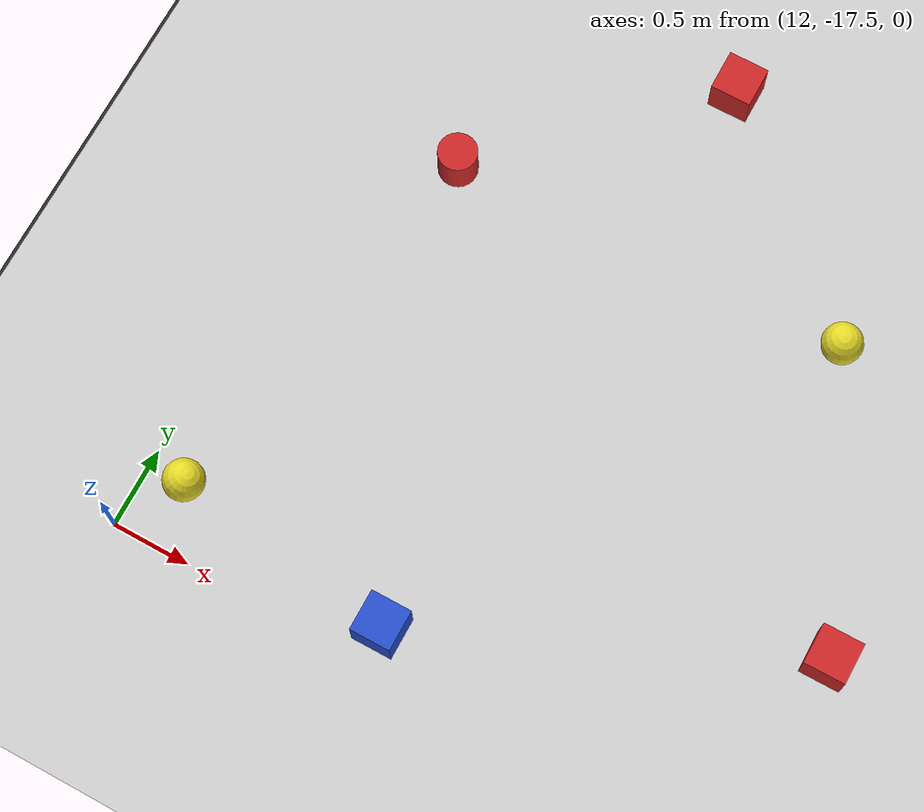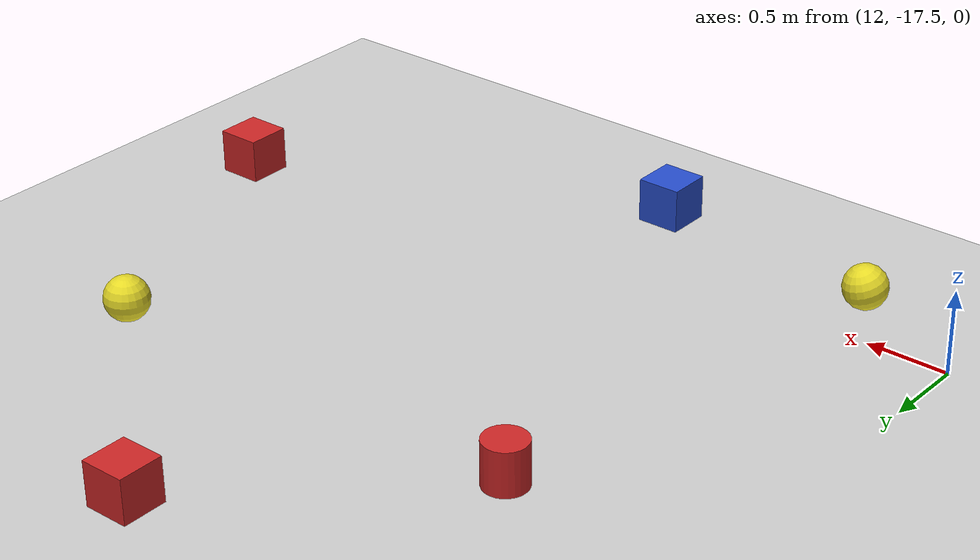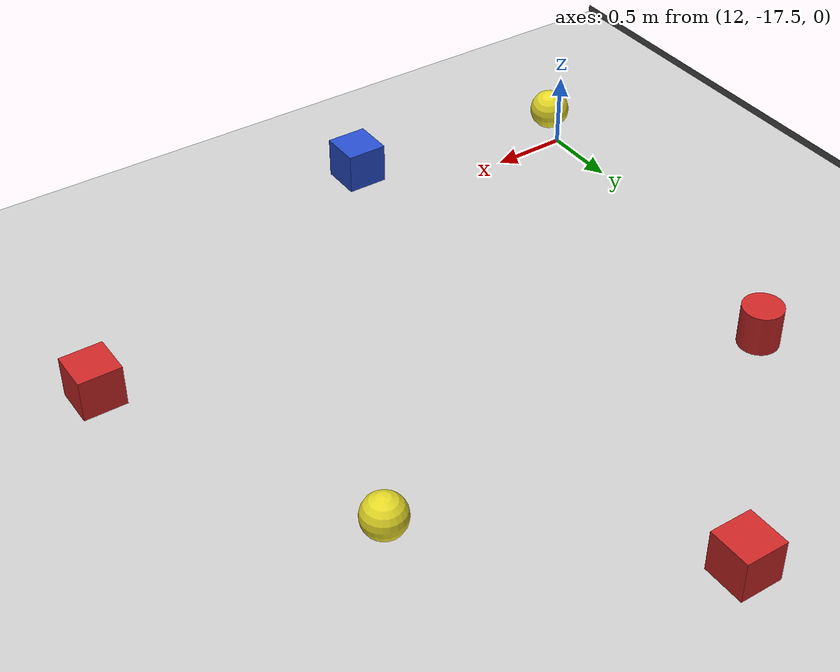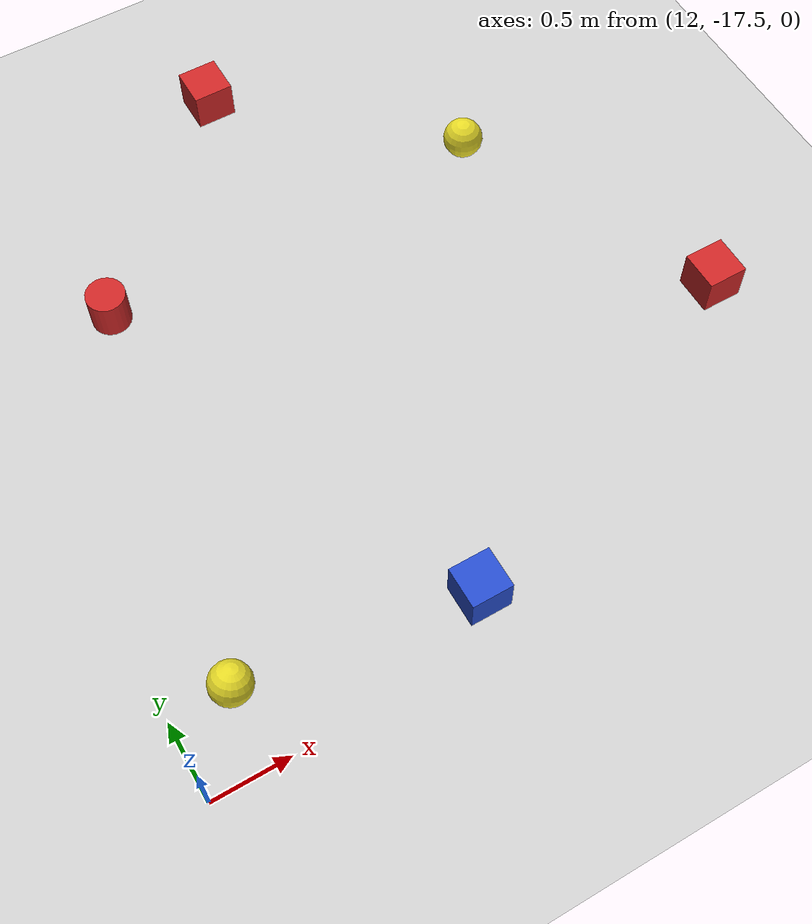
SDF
<sdf version="1.7">
 <world name="default">
  <model name="ground_plane">
   <static>1</static>
   <link name="link">
    <collision name="collision">
     <geometry><plane><normal>0 0 1</normal><size>100 100</size></plane></geometry>
     <surface><friction><ode><mu>100</mu><mu2>50</mu2></ode></friction></surface>
    </collision>
    <visual name="visual">
     <cast_shadows>0</cast_shadows>
     <geometry><plane><normal>0 0 1</normal><size>100 100</size></plane></geometry>
     <material>
      <script><uri>file://media/materials/scripts/gazebo.material</uri><name>Gazebo/Grey</name></script>
     </material>
    </visual>
    <velocity_decay><linear>0</linear><angular>0</angular></velocity_decay>
   </link>
  </model>
  <model name="asphalt_plane">
   <static>1</static>
   <link name="link">
    <collision name="collision"><geometry><box><size>20 20 0.1</size></box></geometry></collision>
    <visual name="visual">
     <cast_shadows>0</cast_shadows>
     <geometry><box><size>20 20 0.1</size></box></geometry>
     <material>
      <script>
       <uri>model://asphalt_plane/materials/scripts</uri>
       <uri>model://asphalt_plane/materials/textures</uri>
       <name>vrc/asphalt</name>
      </script>
     </material>
    </visual>
   </link>
   <pose>-9.73878 -10.1135 0 0 -0 0</pose>
  </model>
  <model name="unit_cylinder_red_25">
   <link name="link">
    <inertial>
     <mass>1</mass>
     <inertia><ixx>0.145833</ixx><ixy>0</ixy><ixz>0</ixz><iyy>0.145833</iyy><iyz>0</iyz><izz>0.125</izz></inertia>
    </inertial>
    <visual name="visual">
     <geometry><cylinder><radius>0.12</radius><length>0.25</length></cylinder></geometry>
     <material>
      <script><name>Gazebo/Red</name><uri>file://media/materials/scripts/gazebo.material</uri></script>
      <shader type="vertex"><normal_map>__default__</normal_map></shader>
      <ambient>1 0 0 1</ambient>
      <diffuse>1 0 0 1</diffuse>
      <specular>0.1 0.1 0.1 1</specular>
      <emissive>0 0 0 1</emissive>
     </material>
    </visual>
    <collision name="collision">
     <geometry><cylinder><radius>0.5</radius><length>1</length></cylinder></geometry>
     <surface>
      <friction>
       <ode><mu>1</mu><mu2>1</mu2><fdir1>0 0 0</fdir1><slip1>0</slip1><slip2>0</slip2></ode>
       <torsional>
        <coefficient>1</coefficient>
        <patch_radius>0</patch_radius>
        <surface_radius>0</surface_radius>
        <use_patch_radius>1</use_patch_radius>
        <ode><slip>0</slip></ode>
       </torsional>
      </friction>
      <bounce><restitution_coefficient>0</restitution_coefficient><threshold>1e+06</threshold></bounce>
      <contact>
       <collide_without_contact>0</collide_without_contact>
       <collide_without_contact_bitmask>1</collide_without_contact_bitmask>
       <collide_bitmask>1</collide_bitmask>
       <ode>
        <soft_cfm>0</soft_cfm>
        <soft_erp>0.2</soft_erp>
        <kp>1e+13</kp>
        <kd>1</kd>
        <max_vel>0.01</max_vel>
        <min_depth>0</min_depth>
       </ode>
       <bullet>
        <split_impulse>1</split_impulse>
        <split_impulse_penetration_threshold>-0.01</split_impulse_penetration_threshold>
        <soft_cfm>0</soft_cfm>
        <soft_erp>0.2</soft_erp>
        <kp>1e+13</kp>
        <kd>1</kd>
       </bullet>
      </contact>
     </surface>
    </collision>
   </link>
   <static>0</static>
   <pose>12.77 -14.7358 0.549992 4e-06 -0 1.5e-05</pose>
  </model>
  <model name="unit_sphere_yellow_25">
   <link name="link">
    <inertial>
     <mass>1</mass>
     <inertia><ixx>0.1</ixx><ixy>0</ixy><ixz>0</ixz><iyy>0.1</iyy><iyz>0</iyz><izz>0.1</izz></inertia>
    </inertial>
    <visual name="visual">
     <geometry><sphere><radius>0.125</radius></sphere></geometry>
     <material>
      <script><name>Gazebo/Yellow</name><uri>file://media/materials/scripts/gazebo.material</uri></script>
      <shader type="vertex"><normal_map>__default__</normal_map></shader>
      <ambient>1 1 0 1</ambient>
      <diffuse>1 1 0 1</diffuse>
      <emissive>0 0 0 1</emissive>
     </material>
    </visual>
    <collision name="collision">
     <geometry><sphere><radius>0.5</radius></sphere></geometry>
     <surface>
      <friction>
       <ode><mu>1</mu><mu2>1</mu2><fdir1>0 0 0</fdir1><slip1>0</slip1><slip2>0</slip2></ode>
       <torsional>
        <coefficient>1</coefficient>
        <patch_radius>0</patch_radius>
        <surface_radius>0</surface_radius>
        <use_patch_radius>1</use_patch_radius>
        <ode><slip>0</slip></ode>
       </torsional>
      </friction>
      <bounce><restitution_coefficient>0</restitution_coefficient><threshold>1e+06</threshold></bounce>
      <contact>
       <collide_without_contact>0</collide_without_contact>
       <collide_without_contact_bitmask>1</collide_without_contact_bitmask>
       <collide_bitmask>1</collide_bitmask>
       <ode>
        <soft_cfm>0</soft_cfm>
        <soft_erp>0.2</soft_erp>
        <kp>1e+13</kp>
        <kd>1</kd>
        <max_vel>0.01</max_vel>
        <min_depth>0</min_depth>
       </ode>
       <bullet>
        <split_impulse>1</split_impulse>
        <split_impulse_penetration_threshold>-0.01</split_impulse_penetration_threshold>
        <soft_cfm>0</soft_cfm>
        <soft_erp>0.2</soft_erp>
        <kp>1e+13</kp>
        <kd>1</kd>
       </bullet>
      </contact>
     </surface>
    </collision>
   </link>
   <static>0</static>
   <pose>12.3546 -17.172 0.55 -0.278605 -0.140395 -1.34287</pose>
  </model>
  <model name="unit_box_red_25_clone_0">
   <link name="link">
    <inertial>
     <mass>1</mass>
     <inertia>
      <ixx>0.166667</ixx>
      <ixy>0</ixy>
      <ixz>0</ixz>
      <iyy>0.166667</iyy>
      <iyz>0</iyz>
      <izz>0.166667</izz>
     </inertia>
    </inertial>
    <visual name="visual">
     <geometry><box><size>0.25 0.25 0.25</size></box></geometry>
     <material>
      <script><name>Gazebo/Red</name><uri>file://media/materials/scripts/gazebo.material</uri></script>
      <shader type="vertex"><normal_map>__default__</normal_map></shader>
      <ambient>1 0 0 1</ambient>
      <diffuse>1 0 0 1</diffuse>
      <specular>0.1 0.1 0.1 1</specular>
      <emissive>0 0 0 1</emissive>
     </material>
    </visual>
    <collision name="collision">
     <geometry><box><size>1 1 1</size></box></geometry>
     <surface>
      <friction>
       <ode><mu>1</mu><mu2>1</mu2><fdir1>0 0 0</fdir1><slip1>0</slip1><slip2>0</slip2></ode>
       <torsional>
        <coefficient>1</coefficient>
        <patch_radius>0</patch_radius>
        <surface_radius>0</surface_radius>
        <use_patch_radius>1</use_patch_radius>
        <ode><slip>0</slip></ode>
       </torsional>
      </friction>
      <bounce><restitution_coefficient>0</restitution_coefficient><threshold>1e+06</threshold></bounce>
      <contact>
       <collide_without_contact>0</collide_without_contact>
       <collide_without_contact_bitmask>1</collide_without_contact_bitmask>
       <collide_bitmask>1</collide_bitmask>
       <ode>
        <soft_cfm>0</soft_cfm>
        <soft_erp>0.2</soft_erp>
        <kp>1e+13</kp>
        <kd>1</kd>
        <max_vel>0.01</max_vel>
        <min_depth>0</min_depth>
       </ode>
       <bullet>
        <split_impulse>1</split_impulse>
        <split_impulse_penetration_threshold>-0.01</split_impulse_penetration_threshold>
        <soft_cfm>0</soft_cfm>
        <soft_erp>0.2</soft_erp>
        <kp>1e+13</kp>
        <kd>1</kd>
       </bullet>
      </contact>
     </surface>
    </collision>
   </link>
   <static>0</static>
   <pose>15.9855 -16.3426 0.549995 -9e-06 -1e-06 3.9e-05</pose>
  </model>
  <model name="unit_box_red_25_clone_1">
   <link name="link">
    <inertial>
     <mass>1</mass>
     <inertia>
      <ixx>0.166667</ixx>
      <ixy>0</ixy>
      <ixz>0</ixz>
      <iyy>0.166667</iyy>
      <iyz>0</iyz>
      <izz>0.166667</izz>
     </inertia>
    </inertial>
    <visual name="visual">
     <geometry><box><size>0.25 0.25 0.25</size></box></geometry>
     <material>
      <script><name>Gazebo/Red</name><uri>file://media/materials/scripts/gazebo.material</uri></script>
      <shader type="vertex"><normal_map>__default__</normal_map></shader>
      <ambient>1 0 0 1</ambient>
      <diffuse>1 0 0 1</diffuse>
      <specular>0.1 0.1 0.1 1</specular>
      <emissive>0 0 0 1</emissive>
     </material>
    </visual>
    <collision name="collision">
     <geometry><box><size>1 1 1</size></box></geometry>
     <surface>
      <friction>
       <ode><mu>1</mu><mu2>1</mu2><fdir1>0 0 0</fdir1><slip1>0</slip1><slip2>0</slip2></ode>
       <torsional>
        <coefficient>1</coefficient>
        <patch_radius>0</patch_radius>
        <surface_radius>0</surface_radius>
        <use_patch_radius>1</use_patch_radius>
        <ode><slip>0</slip></ode>
       </torsional>
      </friction>
      <bounce><restitution_coefficient>0</restitution_coefficient><threshold>1e+06</threshold></bounce>
      <contact>
       <collide_without_contact>0</collide_without_contact>
       <collide_without_contact_bitmask>1</collide_without_contact_bitmask>
       <collide_bitmask>1</collide_bitmask>
       <ode>
        <soft_cfm>0</soft_cfm>
        <soft_erp>0.2</soft_erp>
        <kp>1e+13</kp>
        <kd>1</kd>
        <max_vel>0.01</max_vel>
        <min_depth>0</min_depth>
       </ode>
       <bullet>
        <split_impulse>1</split_impulse>
        <split_impulse_penetration_threshold>-0.01</split_impulse_penetration_threshold>
        <soft_cfm>0</soft_cfm>
        <soft_erp>0.2</soft_erp>
        <kp>1e+13</kp>
        <kd>1</kd>
       </bullet>
      </contact>
     </surface>
    </collision>
   </link>
   <static>0</static>
   <pose>14.0033 -13.5338 0.549995 -9e-06 -1e-06 3.9e-05</pose>
  </model>
  <model name="unit_box_blue_25_clone_0">
   <link name="link">
    <inertial>
     <mass>1</mass>
     <inertia>
      <ixx>0.166667</ixx>
      <ixy>0</ixy>
      <ixz>0</ixz>
      <iyy>0.166667</iyy>
      <iyz>0</iyz>
      <izz>0.166667</izz>
     </inertia>
    </inertial>
    <visual name="visual">
     <geometry><box><size>0.25 0.25 0.25</size></box></geometry>
     <material>
      <script><name>Gazebo/Blue</name><uri>file://media/materials/scripts/gazebo.material</uri></script>
      <shader type="vertex"><normal_map>__default__</normal_map></shader>
      <ambient>0 0 1 1</ambient>
      <diffuse>0 0 1 1</diffuse>
      <specular>0.1 0.1 0.1 1</specular>
      <emissive>0 0 0 1</emissive>
     </material>
    </visual>
    <collision name="collision">
     <geometry><box><size>1 1 1</size></box></geometry>
     <surface>
      <friction>
       <ode><mu>1</mu><mu2>1</mu2><fdir1>0 0 0</fdir1><slip1>0</slip1><slip2>0</slip2></ode>
       <torsional>
        <coefficient>1</coefficient>
        <patch_radius>0</patch_radius>
        <surface_radius>0</surface_radius>
        <use_patch_radius>1</use_patch_radius>
        <ode><slip>0</slip></ode>
       </torsional>
      </friction>
      <bounce><restitution_coefficient>0</restitution_coefficient><threshold>1e+06</threshold></bounce>
      <contact>
       <collide_without_contact>0</collide_without_contact>
       <collide_without_contact_bitmask>1</collide_without_contact_bitmask>
       <collide_bitmask>1</collide_bitmask>
       <ode>
        <soft_cfm>0</soft_cfm>
        <soft_erp>0.2</soft_erp>
        <kp>1e+13</kp>
        <kd>1</kd>
        <max_vel>0.01</max_vel>
        <min_depth>0</min_depth>
       </ode>
       <bullet>
        <split_impulse>1</split_impulse>
        <split_impulse_penetration_threshold>-0.01</split_impulse_penetration_threshold>
        <soft_cfm>0</soft_cfm>
        <soft_erp>0.2</soft_erp>
        <kp>1e+13</kp>
        <kd>1</kd>
       </bullet>
      </contact>
     </surface>
    </collision>
   </link>
   <static>0</static>
   <pose>13.7325 -17.3597 0.55 0 -0 0</pose>
  </model>
  <model name="unit_sphere_yellow_25_clone_1">
   <link name="link">
    <inertial>
     <mass>1</mass>
     <inertia><ixx>0.1</ixx><ixy>0</ixy><ixz>0</ixz><iyy>0.1</iyy><iyz>0</iyz><izz>0.1</izz></inertia>
    </inertial>
    <visual name="visual">
     <geometry><sphere><radius>0.125</radius></sphere></geometry>
     <material>
      <script><name>Gazebo/Yellow</name><uri>file://media/materials/scripts/gazebo.material</uri></script>
      <shader type="vertex"><normal_map>__default__</normal_map></shader>
      <ambient>1 1 0 1</ambient>
      <diffuse>1 1 0 1</diffuse>
      <emissive>0 0 0 1</emissive>
     </material>
    </visual>
    <collision name="collision">
     <geometry><sphere><radius>0.5</radius></sphere></geometry>
     <surface>
      <friction>
       <ode><mu>1</mu><mu2>1</mu2><fdir1>0 0 0</fdir1><slip1>0</slip1><slip2>0</slip2></ode>
       <torsional>
        <coefficient>1</coefficient>
        <patch_radius>0</patch_radius>
        <surface_radius>0</surface_radius>
        <use_patch_radius>1</use_patch_radius>
        <ode><slip>0</slip></ode>
       </torsional>
      </friction>
      <bounce><restitution_coefficient>0</restitution_coefficient><threshold>1e+06</threshold></bounce>
      <contact>
       <collide_without_contact>0</collide_without_contact>
       <collide_without_contact_bitmask>1</collide_without_contact_bitmask>
       <collide_bitmask>1</collide_bitmask>
       <ode>
        <soft_cfm>0</soft_cfm>
        <soft_erp>0.2</soft_erp>
        <kp>1e+13</kp>
        <kd>1</kd>
        <max_vel>0.01</max_vel>
        <min_depth>0</min_depth>
       </ode>
       <bullet>
        <split_impulse>1</split_impulse>
        <split_impulse_penetration_threshold>-0.01</split_impulse_penetration_threshold>
        <soft_cfm>0</soft_cfm>
        <soft_erp>0.2</soft_erp>
        <kp>1e+13</kp>
        <kd>1</kd>
       </bullet>
      </contact>
     </surface>
    </collision>
   </link>
   <static>0</static>
   <pose>15.2464 -14.68 0.55 0 -0 0</pose>
  </model>
 </world>
</sdf>
